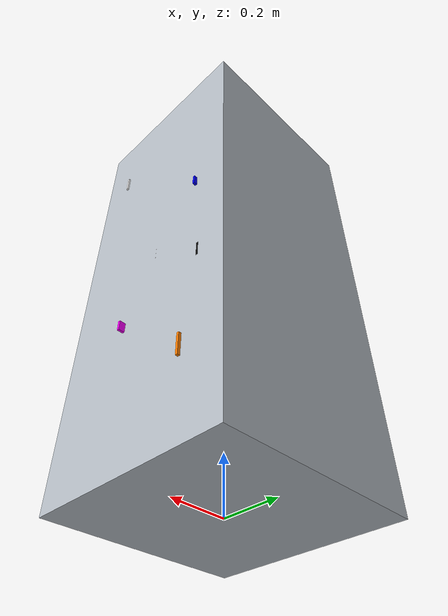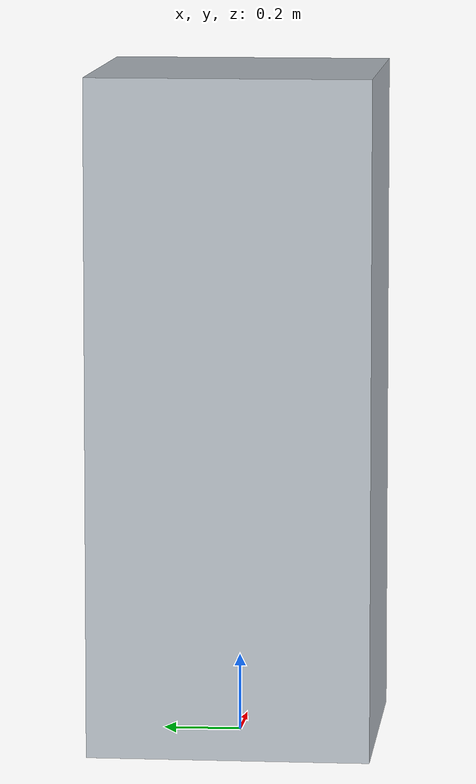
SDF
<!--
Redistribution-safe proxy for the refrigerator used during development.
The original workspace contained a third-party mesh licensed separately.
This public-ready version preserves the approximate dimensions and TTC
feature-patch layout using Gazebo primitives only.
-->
<?xml version="1.0" encoding="UTF-8"?>
<sdf version="1.9">
  <model name="refrigerator_ttc">
    <static>true</static>
    <link name="base_link">
      <visual name="refrigerator_body">
        <pose>0 0 0.867923 0 0 0</pose>
        <geometry>
          <box>
            <size>0.734673 0.7239 1.73585</size>
          </box>
        </geometry>
        <material>
          <ambient>0.72 0.75 0.78 1</ambient>
          <diffuse>0.72 0.75 0.78 1</diffuse>
          <specular>0.25 0.25 0.25 1</specular>
        </material>
      </visual>
      <collision name="refrigerator_collision">
        <pose>0 0 0.867923 0 0 0</pose>
        <geometry>
          <box>
            <size>0.734673 0.7239 1.73585</size>
          </box>
        </geometry>
      </collision>
            <!-- TTC FEATURE PATCHES                                       -->
            <!-- Thin visual markers placed slightly in front of fridge    -->

            <visual name="ttc_feature_01">
                <pose>0.34 -0.22 1.42 0 0 0</pose>
                <geometry>
                    <box>
                        <size>0.07 0.008 0.07</size>
                    </box>
                </geometry>
                <material>
                    <ambient>1 1 1 1</ambient>
                    <diffuse>1 1 1 1</diffuse>
                </material>
            </visual>

            <visual name="ttc_feature_02">
                <pose>0.34 0.18 1.32 0 0 0</pose>
                <geometry>
                    <box>
                        <size>0.05 0.008 0.09</size>
                    </box>
                </geometry>
                <material>
                    <ambient>0 0 0 1</ambient>
                    <diffuse>0 0 0 1</diffuse>
                </material>
            </visual>

            <visual name="ttc_feature_03">
                <pose>0.34 -0.10 1.12 0 0 0.7854</pose>
                <geometry>
                    <box>
                        <size>0.06 0.008 0.06</size>
                    </box>
                </geometry>
                <material>
                    <ambient>1 0 0 1</ambient>
                    <diffuse>1 0 0 1</diffuse>
                </material>
            </visual>

            <visual name="ttc_feature_04">
                <pose>0.34 0.23 1.00 0 0 0</pose>
                <geometry>
                    <box>
                        <size>0.08 0.008 0.04</size>
                    </box>
                </geometry>
                <material>
                    <ambient>0 0 1 1</ambient>
                    <diffuse>0 0 1 1</diffuse>
                </material>
            </visual>

            <visual name="ttc_feature_05">
                <pose>0.34 -0.24 0.88 0 0 0</pose>
                <geometry>
                    <box>
                        <size>0.045 0.008 0.10</size>
                    </box>
                </geometry>
                <material>
                    <ambient>1 1 0 1</ambient>
                    <diffuse>1 1 0 1</diffuse>
                </material>
            </visual>

            <visual name="ttc_feature_06">
                <pose>0.34 0.02 0.78 0 0 0.7854</pose>
                <geometry>
                    <box>
                        <size>0.07 0.008 0.07</size>
                    </box>
                </geometry>
                <material>
                    <ambient>1 1 1 1</ambient>
                    <diffuse>1 1 1 1</diffuse>
                </material>
            </visual>

            <visual name="ttc_feature_07">
                <pose>0.34 0.25 0.64 0 0 0</pose>
                <geometry>
                    <box>
                        <size>0.055 0.008 0.055</size>
                    </box>
                </geometry>
                <material>
                    <ambient>0 0 0 1</ambient>
                    <diffuse>0 0 0 1</diffuse>
                </material>
            </visual>

            <visual name="ttc_feature_08">
                <pose>0.34 -0.08 0.52 0 0 0</pose>
                <geometry>
                    <box>
                        <size>0.10 0.008 0.035</size>
                    </box>
                </geometry>
                <material>
                    <ambient>1 0 1 1</ambient>
                    <diffuse>1 0 1 1</diffuse>
                </material>
            </visual>

            <visual name="ttc_feature_09">
                <pose>0.34 -0.26 0.38 0 0 0.7854</pose>
                <geometry>
                    <box>
                        <size>0.055 0.008 0.055</size>
                    </box>
                </geometry>
                <material>
                    <ambient>0 1 1 1</ambient>
                    <diffuse>0 1 1 1</diffuse>
                </material>
            </visual>

            <visual name="ttc_feature_10">
                <pose>0.34 0.20 0.30 0 0 0</pose>
                <geometry>
                    <box>
                        <size>0.075 0.008 0.075</size>
                    </box>
                </geometry>
                <material>
                    <ambient>1 0.5 0 1</ambient>
                    <diffuse>1 0.5 0 1</diffuse>
                </material>
            </visual>

    </link>
  </model>
</sdf>
